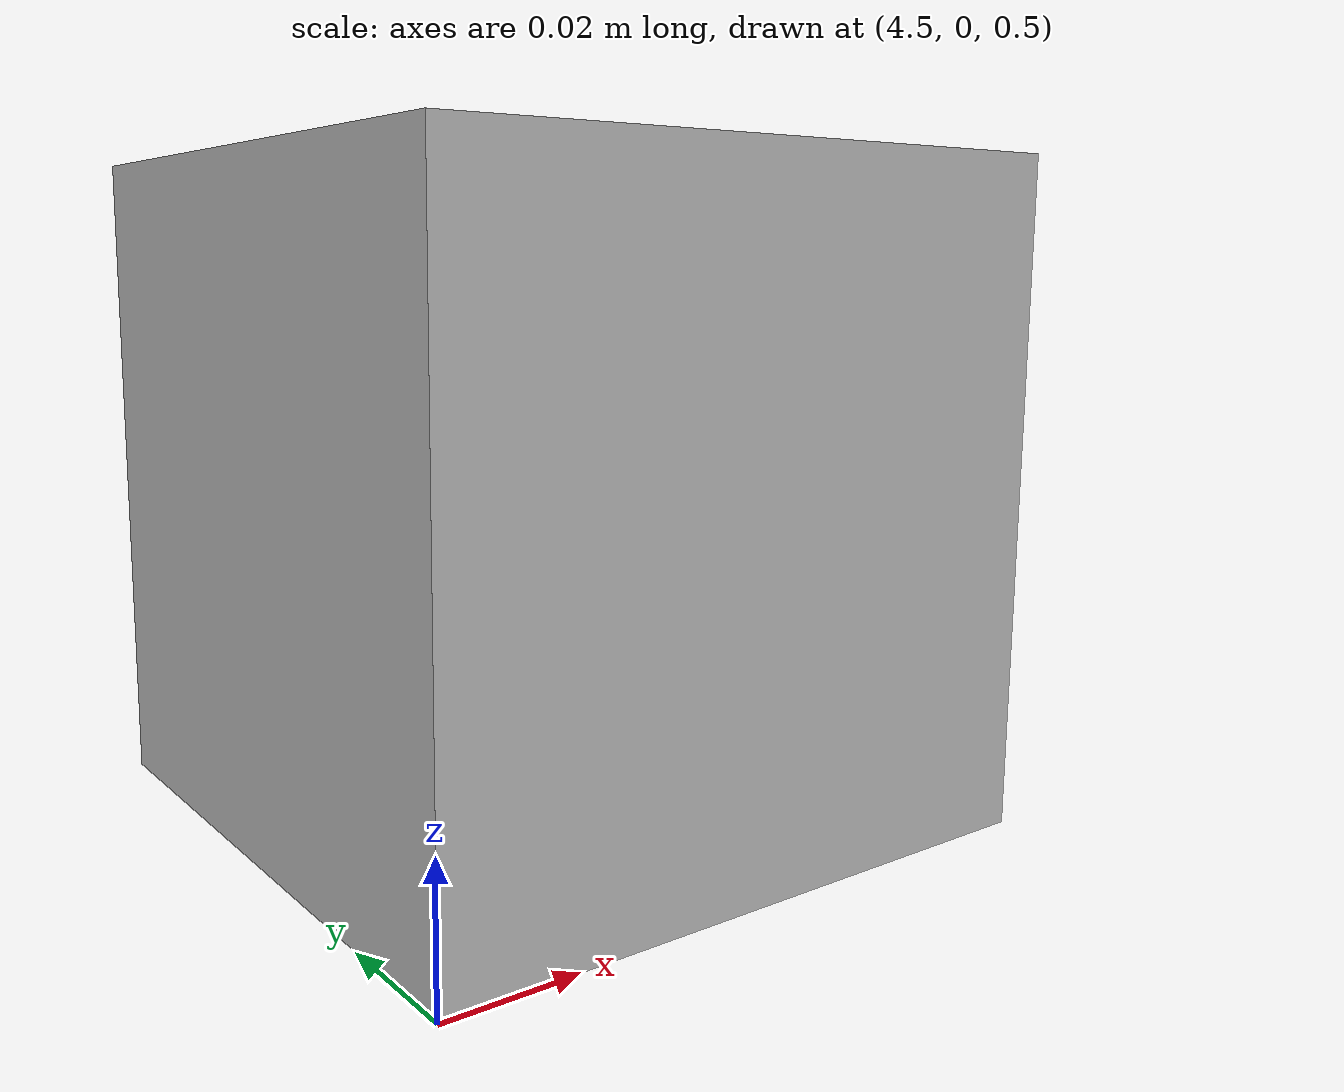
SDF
<?xml version="1.0"?>
<sdf version="1.9">
  <model name="thermal_camera">
    <pose>4.5 0 0.5 0.0 0.0 0</pose>
     <self_collide>false</self_collide>
    <static>false</static>
    <link name="link">
      <pose>0.05 0.05 0.05 0 0 0</pose>
      <visual name="visual">
        <geometry>
          <box>
            <size>0.1 0.1 0.1</size>
          </box>
        </geometry>
      </visual>
      <inertial>
  <mass>0.05</mass>
  <inertia>
    <ixx>0.00008</ixx>
    <ixy>0</ixy>
    <ixz>0</ixz>
    <iyy>0.00008</iyy>
    <iyz>0</iyz>
    <izz>0.00008</izz>
  </inertia>
</inertial>
      <sensor name="thermal_camera_8bit" type="thermal">
        <camera>
          <horizontal_fov>1.047</horizontal_fov>
          <image>
            <width>320</width>
            <height>240</height>
            <format>L8</format>
          </image>
          <clip>
            <near>0.1</near>
            <far>100</far>
          </clip>
        </camera>
        <always_on>1</always_on>
        <update_rate>30</update_rate>
        <visualize>true</visualize>
        <topic>thermal_camera_8bit/image</topic>
        <plugin
            filename="gz-sim-thermal-sensor-system"
            name="gz::sim::systems::ThermalSensor">
          <min_temp>253.15</min_temp>
          <max_temp>673.15</max_temp>
          <resolution>3.0</resolution>
        </plugin>
      </sensor>
    </link>
  </model>
</sdf>
